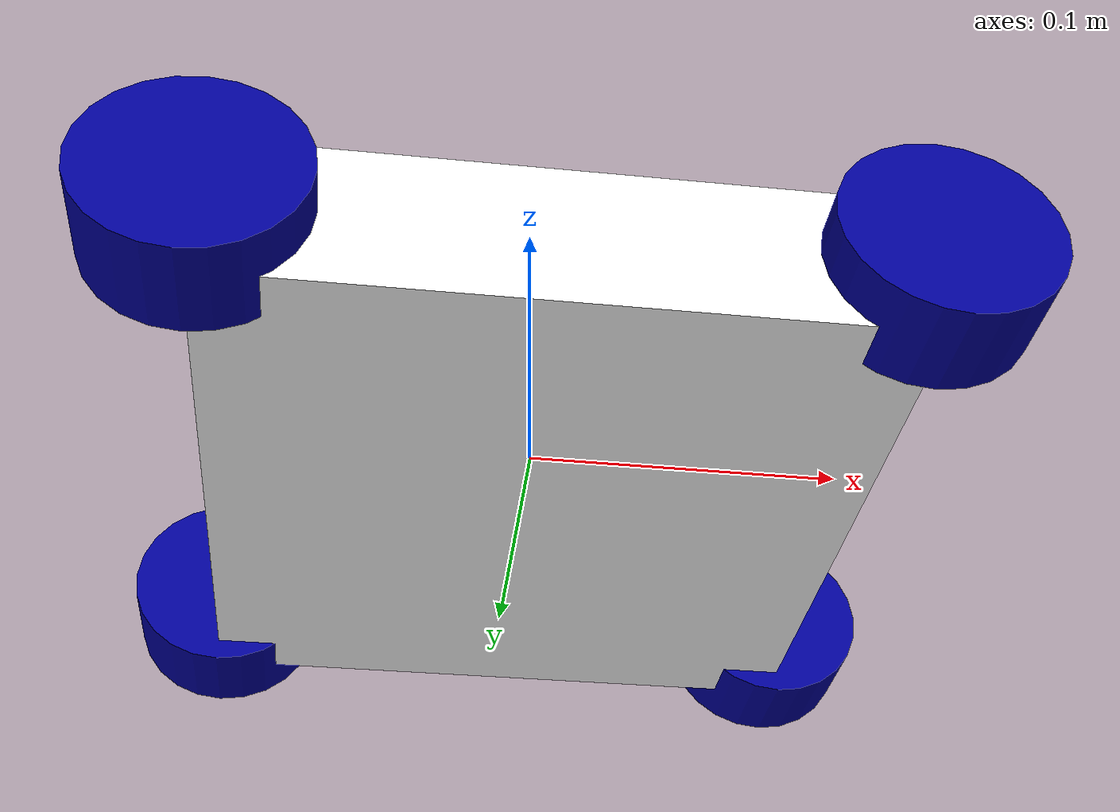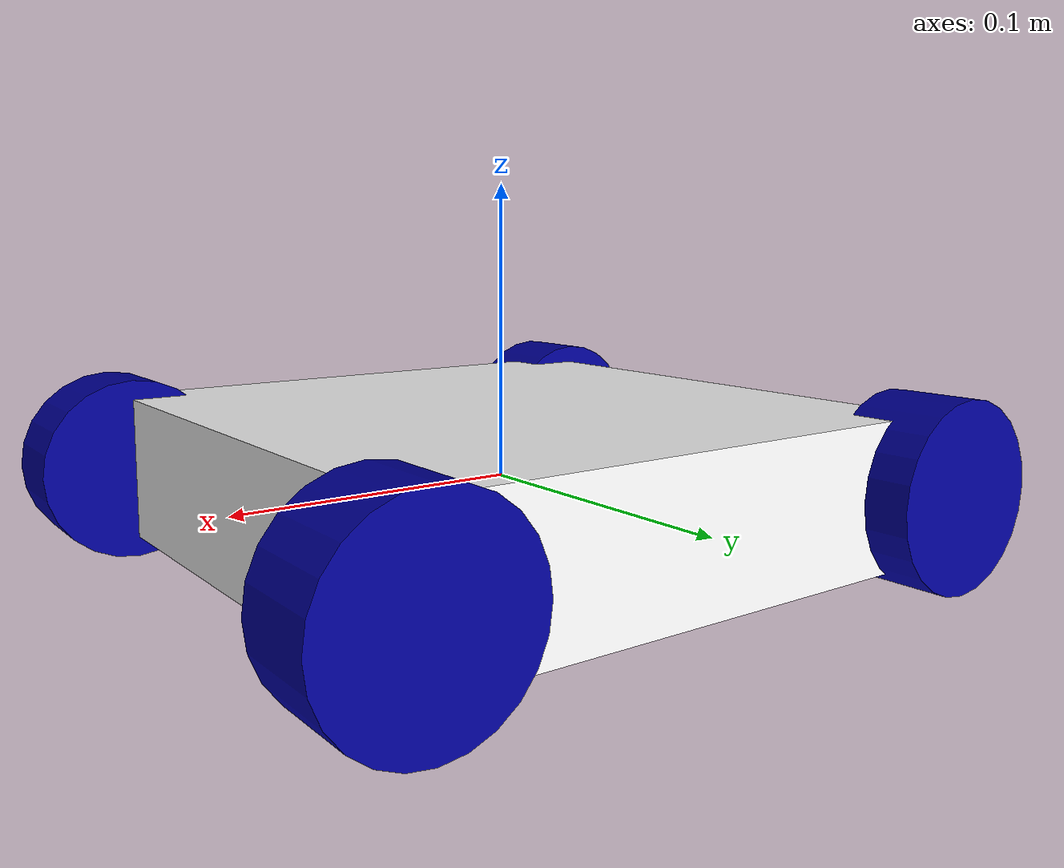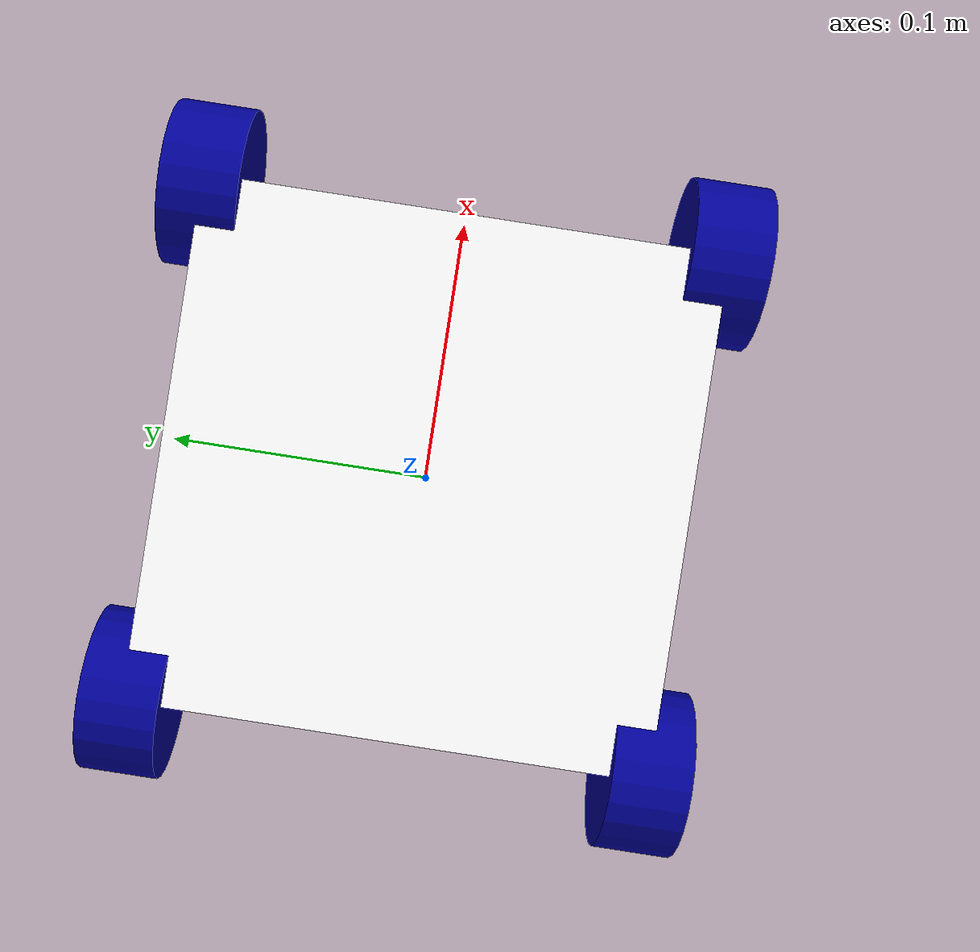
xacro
<?xml version="1.0" ?>

<robot name="differential_wheeled_robot"
  xmlns:xacro="http://www.ros.org/wiki/xacro">
  <!-- Wheels -->
  <!-- in kg-->
  <!-- Defining the colors used in this robot -->
  <material name="Black">
    <color rgba="0.0 0.0 0.0 1.0"/>
  </material>
  <material name="Red">
    <color rgba="0.8 0.0 0.0 1.0"/>
  </material>
  <material name="White">
    <color rgba="1.0 1.0 1.0 1.0"/>
  </material>
  <material name="Blue">
    <color rgba="0.0 0.0 0.8 1.0"/>
  </material>
<material name="gray">
    <color rgba="0.0 0.0 0.6 1.0"/>
  </material>
  <!-- BASE-LINK -->
  <!--Actual body/chassis of the robot-->
  <link name="base_link">
    <inertial>
      <mass value="5"/>
      <origin xyz="0 0 0"/>
      <!--The 3x3 rotational inertia matrix. -->
      <inertia ixx="0.0282916666667" ixy="0" ixz="0" iyy="0.0282916666667" iyz="0" izz="0.05625"/>
    </inertial>
    <visual>
      <origin rpy="0 0 0" xyz="0 0 0"/>
      <geometry>
        <box size="0.2 0.2 0.05"/>
      </geometry>
      <material name="White"/>
    </visual>
    <collision>
      <origin rpy="0 0 0 " xyz="0 0 0"/>
      <geometry>
        <box size="0.28 0.17 0.05"/>
      </geometry>
    </collision>
  </link>
  <gazebo reference="base_link">
    <material>Gazebo/Blue</material>
    <turnGravityOff>false</turnGravityOff>
  </gazebo>
  <!--fb : front, back ; lr: left, right -->
  <link name="front_right_wheel">
    <visual>
      <origin rpy="1.57079632679 0  0 " xyz="0 0 0"/>
      <geometry>
        <cylinder length="0.03" radius="0.032"/>
      </geometry>
      <material name="gray"/>
    </visual>
    <collision>
      <origin rpy="1.57079632679 0 0 " xyz="0 0 0"/>
      <geometry>
        <cylinder length="0.03" radius="0.032"/>
      </geometry>
    </collision>
    <inertial>
      <mass value="2.5"/>
      <origin xyz="0 0 0"/>
      <inertia ixx="0.00108333333333" ixy="0" ixz="0" iyy="0.00108333333333" iyz="0" izz="0.002"/>
    </inertial>
  </link>
  <gazebo reference="front_right_wheel">
    <mu1 value="1.0"/>
    <mu2 value="1.0"/>
    <kp value="10000000.0"/>
    <kd value="1.0"/>
    <fdir1 value="1 0 0"/>
    <material>Gazebo/Black</material>
    <turnGravityOff>false</turnGravityOff>
  </gazebo>
  <joint name="front_right_wheel_joint" type="continuous">
    <parent link="base_link"/>
    <child link="front_right_wheel"/>
    <origin rpy="0 0 0" xyz="0.10 -0.10 0.0"/>
    <axis rpy="0  0" xyz="0 1 0"/>
    <limit effort="100" velocity="100"/>
    <joint_properties damping="0.0" friction="0.0"/>
  </joint>
  <!-- Transmission is important to link the joints and the controller -->
  <transmission name="front_right_wheel_joint_trans">
    <type>transmission_interface/SimpleTransmission</type>
    <joint name="front_right_wheel_joint"/>
    <actuator name="front_right_wheel_joint_motor">
      <hardwareInterface>EffortJointInterface</hardwareInterface>
      <mechanicalReduction>1</mechanicalReduction>
    </actuator>
  </transmission>
  <!--fb : front, back ; lr: left, right -->
  <link name="front_left_wheel">
    <visual>
      <origin rpy="1.57079632679 0  0 " xyz="0 0 0"/>
      <geometry>
        <cylinder length="0.03" radius="0.032"/>
      </geometry>
      <material name="gray"/>
    </visual>
    <collision>
      <origin rpy="1.57079632679 0 0 " xyz="0 0 0"/>
      <geometry>
        <cylinder length="0.03" radius="0.032"/>
      </geometry>
    </collision>
    <inertial>
      <mass value="2.5"/>
      <origin xyz="0 0 0"/>
      <inertia ixx="0.00108333333333" ixy="0" ixz="0" iyy="0.00108333333333" iyz="0" izz="0.002"/>
    </inertial>
  </link>
  <gazebo reference="front_left_wheel">
    <mu1 value="1.0"/>
    <mu2 value="1.0"/>
    <kp value="10000000.0"/>
    <kd value="1.0"/>
    <fdir1 value="1 0 0"/>
    <material>Gazebo/Black</material>
    <turnGravityOff>false</turnGravityOff>
  </gazebo>
  <joint name="front_left_wheel_joint" type="continuous">
    <parent link="base_link"/>
    <child link="front_left_wheel"/>
    <origin rpy="0 0 0" xyz="0.10 0.10 0.0"/>
    <axis rpy="0  0" xyz="0 1 0"/>
    <limit effort="100" velocity="100"/>
    <joint_properties damping="0.0" friction="0.0"/>
  </joint>
  <!-- Transmission is important to link the joints and the controller -->
  <transmission name="front_left_wheel_joint_trans">
    <type>transmission_interface/SimpleTransmission</type>
    <joint name="front_left_wheel_joint"/>
    <actuator name="front_left_wheel_joint_motor">
      <hardwareInterface>EffortJointInterface</hardwareInterface>
      <mechanicalReduction>1</mechanicalReduction>
    </actuator>
  </transmission>

  <link name="back_right_wheel">
    <visual>
      <origin rpy="1.57079632679 0  0 " xyz="0 0 0"/>
      <geometry>
        <cylinder length="0.03" radius="0.032"/>
      </geometry>
      <material name="gray"/>
    </visual>
    <collision>
      <origin rpy="1.57079632679 0 0 " xyz="0 0 0"/>
      <geometry>
        <cylinder length="0.03" radius="0.032"/>
      </geometry>
    </collision>
    <inertial>
      <mass value="2.5"/>
      <origin xyz="0 0 0"/>
      <inertia ixx="0.00108333333333" ixy="0" ixz="0" iyy="0.00108333333333" iyz="0" izz="0.002"/>
    </inertial>
  </link>
  <gazebo reference="back_right_wheel">
    <mu1 value="1.0"/>
    <mu2 value="1.0"/>
    <kp value="10000000.0"/>
    <kd value="1.0"/>
    <fdir1 value="1 0 0"/>
    <material>Gazebo/Black</material>
    <turnGravityOff>false</turnGravityOff>
  </gazebo>
  <joint name="back_right_wheel_joint" type="continuous">
    <parent link="base_link"/>
    <child link="back_right_wheel"/>
    <origin rpy="0 0 0" xyz="-0.10 -0.10 0.0"/>
    <axis rpy="0  0" xyz="0 1 0"/>
    <limit effort="100" velocity="100"/>
    <joint_properties damping="0.0" friction="0.0"/>
  </joint>
  <!-- Transmission is important to link the joints and the controller -->
  <transmission name="back_right_wheel_joint_trans">
    <type>transmission_interface/SimpleTransmission</type>
    <joint name="back_right_wheel_joint"/>
    <actuator name="back_right_wheel_joint_motor">
      <hardwareInterface>EffortJointInterface</hardwareInterface>
      <mechanicalReduction>1</mechanicalReduction>
    </actuator>
  </transmission>
  <!--fb : front, back ; lr: left, right -->
  <link name="back_left_wheel">
    <visual>
      <origin rpy="1.57079632679 0  0 " xyz="0 0 0"/>
      <geometry>
        <cylinder length="0.03" radius="0.032"/>
      </geometry>
      <material name="gray"/>
    </visual>
    <collision>
      <origin rpy="1.57079632679 0 0 " xyz="0 0 0"/>
      <geometry>
        <cylinder length="0.03" radius="0.032"/>
      </geometry>
    </collision>
    <inertial>
      <mass value="2.5"/>
      <origin xyz="0 0 0"/>
      <inertia ixx="0.00108333333333" ixy="0" ixz="0" iyy="0.00108333333333" iyz="0" izz="0.002"/>
    </inertial>
  </link>
  <gazebo reference="back_left_wheel">
    <mu1 value="1.0"/>
    <mu2 value="1.0"/>
    <kp value="10000000.0"/>
    <kd value="1.0"/>
    <fdir1 value="1 0 0"/>
    <material>Gazebo/Black</material>
    <turnGravityOff>false</turnGravityOff>
  </gazebo>
  <joint name="back_left_wheel_joint" type="continuous">
    <parent link="base_link"/>
    <child link="back_left_wheel"/>
    <origin rpy="0 0 0" xyz="-0.10 0.10 0.0"/>
    <axis rpy="0  0" xyz="0 1 0"/>
    <limit effort="100" velocity="100"/>
    <joint_properties damping="0.0" friction="0.0"/>
  </joint>
  <!-- Transmission is important to link the joints and the controller -->
  <transmission name="back_left_wheel_joint_trans">
    <type>transmission_interface/SimpleTransmission</type>
    <joint name="back_left_wheel_joint"/>
    <actuator name="back_left_wheel_joint_motor">
      <hardwareInterface>EffortJointInterface</hardwareInterface>
      <mechanicalReduction>1</mechanicalReduction>
    </actuator>
  </transmission>
  <!-- SENSORS -->
  <!-- camera -->
    <!-- SENSORS -->

  <gazebo>
   <plugin name="object_controller" filename="libgazebo_ros_planar_move.so">
      <commandTopic>/cmd_vel</commandTopic>
      <odometryRate>20.0</odometryRate>
      <broadcastTF>true</broadcastTF>
      <publishOdomTF>true</publishOdomTF>
      <robotBaseFrame>$(arg bodyframe)/base_link</robotBaseFrame>
      <odometryTopic>odom</odometryTopic>
      <odometryFrame>odom</odometryFrame>
    </plugin>

    <plugin name="p3d_base_controller" filename="libgazebo_ros_p3d.so">
    	<alwaysOn>true</alwaysOn>
    	<updateRate>50.0</updateRate>
    	<bodyName>base_link</bodyName>
   	<topicName>base_pose_ground_truth</topicName>
    	<gaussianNoise>0.01</gaussianNoise>
    	<frameName>world</frameName>
    	<xyzOffsets>0 0 0</xyzOffsets>
   	<rpyOffsets>0 0 0</rpyOffsets>
 </plugin>
  </gazebo>
</robot>
